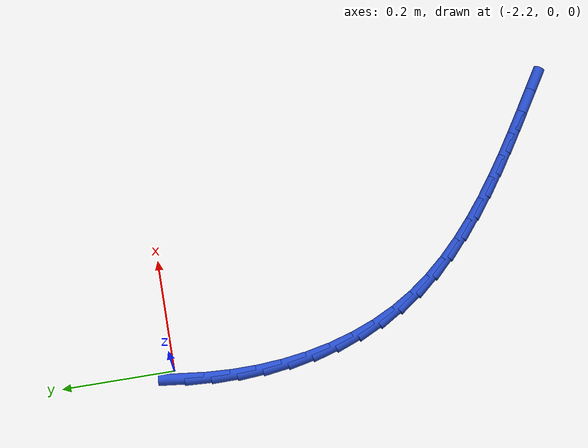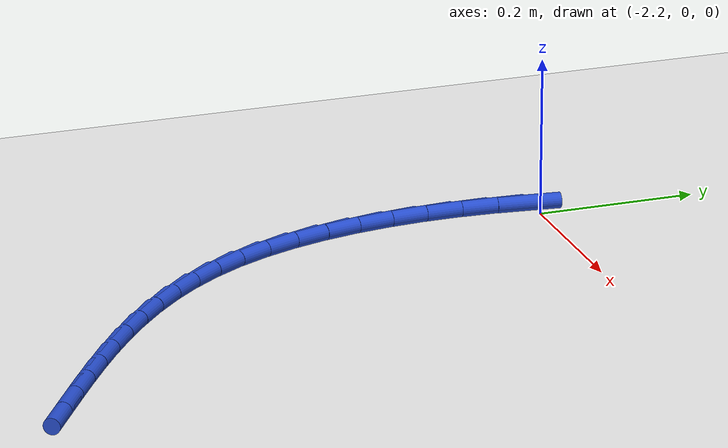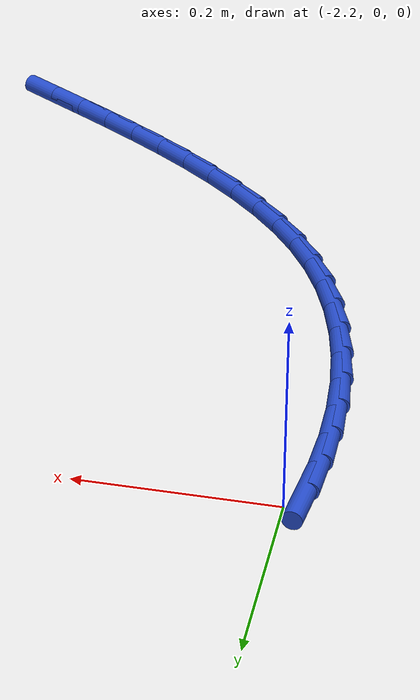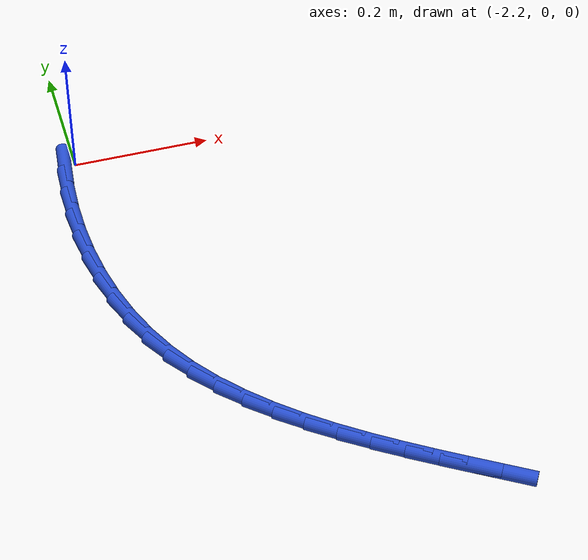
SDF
<sdf version="1.6">
 <world name="default">
  <model name="ground_plane">
   <static>1</static>
   <link name="link">
    <collision name="collision">
     <geometry><plane><normal>0 0 1</normal><size>100 100</size></plane></geometry>
     <surface><friction><ode><mu>100</mu><mu2>50</mu2></ode></friction></surface>
    </collision>
    <visual name="visual">
     <cast_shadows>0</cast_shadows>
     <geometry><plane><normal>0 0 1</normal><size>100 100</size></plane></geometry>
     <material>
      <script><uri>file://media/materials/scripts/gazebo.material</uri><name>Gazebo/WhiteGlow</name></script>
     </material>
    </visual>
   </link>
  </model>
  <model name="line">
   <link name="link_80">
    <pose>-2.217148998428473 -0.00914010078942517 0.01 0 1.57 1.4589769109114703</pose>
    <collision name="collision">
     <geometry><cylinder><radius>0.01</radius><length>0.08</length></cylinder></geometry>
    </collision>
    <visual name="visual">
     <material>
      <script><name>Gazebo/Blue</name><uri>file://media/materials/scripts/gazebo.material</uri></script>
     </material>
     <geometry><cylinder><radius>0.01</radius><length>0.08</length></cylinder></geometry>
    </visual>
   </link>
   <link name="link_81">
    <pose>-2.2222875679667924 -0.05490259009111516 0.01 0 1.57 1.5187977189964648</pose>
    <collision name="collision">
     <geometry><cylinder><radius>0.01</radius><length>0.08</length></cylinder></geometry>
    </collision>
    <visual name="visual">
     <material>
      <script><name>Gazebo/Blue</name><uri>file://media/materials/scripts/gazebo.material</uri></script>
     </material>
     <geometry><cylinder><radius>0.01</radius><length>0.08</length></cylinder></geometry>
    </visual>
   </link>
   <link name="link_82">
    <pose>-2.2246775760526476 -0.10082408145327608 0.01 0 1.57 -1.5612927358926931</pose>
    <collision name="collision">
     <geometry><cylinder><radius>0.01</radius><length>0.08</length></cylinder></geometry>
    </collision>
    <visual name="visual">
     <material>
      <script><name>Gazebo/Blue</name><uri>file://media/materials/scripts/gazebo.material</uri></script>
     </material>
     <geometry><cylinder><radius>0.01</radius><length>0.08</length></cylinder></geometry>
    </visual>
   </link>
   <link name="link_83">
    <pose>-2.22424249986499 -0.14660289218041134 0.01 0 1.57 -1.4973273017403008</pose>
    <collision name="collision">
     <geometry><cylinder><radius>0.01</radius><length>0.08</length></cylinder></geometry>
    </collision>
    <visual name="visual">
     <material>
      <script><name>Gazebo/Blue</name><uri>file://media/materials/scripts/gazebo.material</uri></script>
     </material>
     <geometry><cylinder><radius>0.01</radius><length>0.08</length></cylinder></geometry>
    </visual>
   </link>
   <link name="link_84">
    <pose>-2.2209058165827713 -0.1919373395770268 0.01 0 1.57 -1.4301074008903827</pose>
    <collision name="collision">
     <geometry><cylinder><radius>0.01</radius><length>0.08</length></cylinder></geometry>
    </collision>
    <visual name="visual">
     <material>
      <script><name>Gazebo/Blue</name><uri>file://media/materials/scripts/gazebo.material</uri></script>
     </material>
     <geometry><cylinder><radius>0.01</radius><length>0.08</length></cylinder></geometry>
    </visual>
   </link>
   <link name="link_85">
    <pose>-2.2145910033849425 -0.23652574094762743 0.01 0 1.57 -1.358839697114405</pose>
    <collision name="collision">
     <geometry><cylinder><radius>0.01</radius><length>0.08</length></cylinder></geometry>
    </collision>
    <visual name="visual">
     <material>
      <script><name>Gazebo/Blue</name><uri>file://media/materials/scripts/gazebo.material</uri></script>
     </material>
     <geometry><cylinder><radius>0.01</radius><length>0.08</length></cylinder></geometry>
    </visual>
   </link>
   <link name="link_86">
    <pose>-2.205221537450456 -0.28006641359671847 0.01 0 1.57 -1.282751184687003</pose>
    <collision name="collision">
     <geometry><cylinder><radius>0.01</radius><length>0.08</length></cylinder></geometry>
    </collision>
    <visual name="visual">
     <material>
      <script><name>Gazebo/Blue</name><uri>file://media/materials/scripts/gazebo.material</uri></script>
     </material>
     <geometry><cylinder><radius>0.01</radius><length>0.08</length></cylinder></geometry>
    </visual>
   </link>
   <link name="link_87">
    <pose>-2.192720895958263 -0.32225767482880563 0.01 0 1.57 -1.2011329461596805</pose>
    <collision name="collision">
     <geometry><cylinder><radius>0.01</radius><length>0.08</length></cylinder></geometry>
    </collision>
    <visual name="visual">
     <material>
      <script><name>Gazebo/Blue</name><uri>file://media/materials/scripts/gazebo.material</uri></script>
     </material>
     <geometry><cylinder><radius>0.01</radius><length>0.08</length></cylinder></geometry>
    </visual>
   </link>
   <link name="link_88">
    <pose>-2.1770125560873153 -0.3627978419483924 0.01 0 1.57 -1.1134113458932742</pose>
    <collision name="collision">
     <geometry><cylinder><radius>0.01</radius><length>0.08</length></cylinder></geometry>
    </collision>
    <visual name="visual">
     <material>
      <script><name>Gazebo/Blue</name><uri>file://media/materials/scripts/gazebo.material</uri></script>
     </material>
     <geometry><cylinder><radius>0.01</radius><length>0.08</length></cylinder></geometry>
    </visual>
   </link>
   <link name="link_89">
    <pose>-2.158019995016565 -0.4013852322599847 0.01 0 1.57 -1.0200822075237066</pose>
    <collision name="collision">
     <geometry><cylinder><radius>0.01</radius><length>0.08</length></cylinder></geometry>
    </collision>
    <visual name="visual">
     <material>
      <script><name>Gazebo/Blue</name><uri>file://media/materials/scripts/gazebo.material</uri></script>
     </material>
     <geometry><cylinder><radius>0.01</radius><length>0.08</length></cylinder></geometry>
    </visual>
   </link>
   <link name="link_90">
    <pose>-2.135690768168279 -0.4377468280054601 0.01 0 1.57 -0.9301320109180112</pose>
    <collision name="collision">
     <geometry><cylinder><radius>0.01</radius><length>0.08</length></cylinder></geometry>
    </collision>
    <visual name="visual">
     <material>
      <script><name>Gazebo/Blue</name><uri>file://media/materials/scripts/gazebo.material</uri></script>
     </material>
     <geometry><cylinder><radius>0.01</radius><length>0.08</length></cylinder></geometry>
    </visual>
   </link>
   <link name="link_91">
    <pose>-2.1102219685225387 -0.47190668369948147 0.01 0 1.57 -0.849761670238242</pose>
    <collision name="collision">
     <geometry><cylinder><radius>0.01</radius><length>0.08</length></cylinder></geometry>
    </collision>
    <visual name="visual">
     <material>
      <script><name>Gazebo/Blue</name><uri>file://media/materials/scripts/gazebo.material</uri></script>
     </material>
     <geometry><cylinder><radius>0.01</radius><length>0.08</length></cylinder></geometry>
    </visual>
   </link>
   <link name="link_92">
    <pose>-2.0819583422183654 -0.5040646336467166 0.01 0 1.57 -0.779607973971404</pose>
    <collision name="collision">
     <geometry><cylinder><radius>0.01</radius><length>0.08</length></cylinder></geometry>
    </collision>
    <visual name="visual">
     <material>
      <script><name>Gazebo/Blue</name><uri>file://media/materials/scripts/gazebo.material</uri></script>
     </material>
     <geometry><cylinder><radius>0.01</radius><length>0.08</length></cylinder></geometry>
    </visual>
   </link>
   <link name="link_93">
    <pose>-2.0512465608878654 -0.5344228044344534 0.01 0 1.57 -0.7196736120943518</pose>
    <collision name="collision">
     <geometry><cylinder><radius>0.01</radius><length>0.08</length></cylinder></geometry>
    </collision>
    <visual name="visual">
     <material>
      <script><name>Gazebo/Blue</name><uri>file://media/materials/scripts/gazebo.material</uri></script>
     </material>
     <geometry><cylinder><radius>0.01</radius><length>0.08</length></cylinder></geometry>
    </visual>
   </link>
   <link name="link_94">
    <pose>-2.0184332961631455 -0.5631833226499818 0.01 0 1.57 -0.66961401940539</pose>
    <collision name="collision">
     <geometry><cylinder><radius>0.01</radius><length>0.08</length></cylinder></geometry>
    </collision>
    <visual name="visual">
     <material>
      <script><name>Gazebo/Blue</name><uri>file://media/materials/scripts/gazebo.material</uri></script>
     </material>
     <geometry><cylinder><radius>0.01</radius><length>0.08</length></cylinder></geometry>
    </visual>
   </link>
   <link name="link_95">
    <pose>-1.9838652196763134 -0.5905483148805909 0.01 0 1.57 -0.6289248383860808</pose>
    <collision name="collision">
     <geometry><cylinder><radius>0.01</radius><length>0.08</length></cylinder></geometry>
    </collision>
    <visual name="visual">
     <material>
      <script><name>Gazebo/Blue</name><uri>file://media/materials/scripts/gazebo.material</uri></script>
     </material>
     <geometry><cylinder><radius>0.01</radius><length>0.08</length></cylinder></geometry>
    </visual>
   </link>
   <link name="link_96">
    <pose>-1.9478890030594749 -0.6167199077135703 0.01 0 1.57 -0.5970786923299659</pose>
    <collision name="collision">
     <geometry><cylinder><radius>0.01</radius><length>0.08</length></cylinder></geometry>
    </collision>
    <visual name="visual">
     <material>
      <script><name>Gazebo/Blue</name><uri>file://media/materials/scripts/gazebo.material</uri></script>
     </material>
     <geometry><cylinder><radius>0.01</radius><length>0.08</length></cylinder></geometry>
    </visual>
   </link>
   <link name="link_97">
    <pose>-1.9108513179447386 -0.6419002277362084 0.01 0 1.57 -0.5736155098062016</pose>
    <collision name="collision">
     <geometry><cylinder><radius>0.01</radius><length>0.08</length></cylinder></geometry>
    </collision>
    <visual name="visual">
     <material>
      <script><name>Gazebo/Blue</name><uri>file://media/materials/scripts/gazebo.material</uri></script>
     </material>
     <geometry><cylinder><radius>0.01</radius><length>0.08</length></cylinder></geometry>
    </visual>
   </link>
   <link name="link_98">
    <pose>-1.8730988359642111 -0.6662914015357948 0.01 0 1.57 -0.558198823581648</pose>
    <collision name="collision">
     <geometry><cylinder><radius>0.01</radius><length>0.08</length></cylinder></geometry>
    </collision>
    <visual name="visual">
     <material>
      <script><name>Gazebo/Blue</name><uri>file://media/materials/scripts/gazebo.material</uri></script>
     </material>
     <geometry><cylinder><radius>0.01</radius><length>0.08</length></cylinder></geometry>
    </visual>
   </link>
   <link name="link_99">
    <pose>-1.8349782287499983 -0.6900955556996183 0.01 0 1.57 -0.550650751098699</pose>
    <collision name="collision">
     <geometry><cylinder><radius>0.01</radius><length>0.08</length></cylinder></geometry>
    </collision>
    <visual name="visual">
     <material>
      <script><name>Gazebo/Blue</name><uri>file://media/materials/scripts/gazebo.material</uri></script>
     </material>
     <geometry><cylinder><radius>0.01</radius><length>0.08</length></cylinder></geometry>
    </visual>
   </link>
   <link name="link_100">
    <pose>-1.7968361679342086 -0.713514816814969 0.01 0 1.57 -0.5509755665989048</pose>
    <collision name="collision">
     <geometry><cylinder><radius>0.01</radius><length>0.08</length></cylinder></geometry>
    </collision>
    <visual name="visual">
     <material>
      <script><name>Gazebo/Blue</name><uri>file://media/materials/scripts/gazebo.material</uri></script>
     </material>
     <geometry><cylinder><radius>0.01</radius><length>0.08</length></cylinder></geometry>
    </visual>
   </link>
  </model>
 </world>
</sdf>
